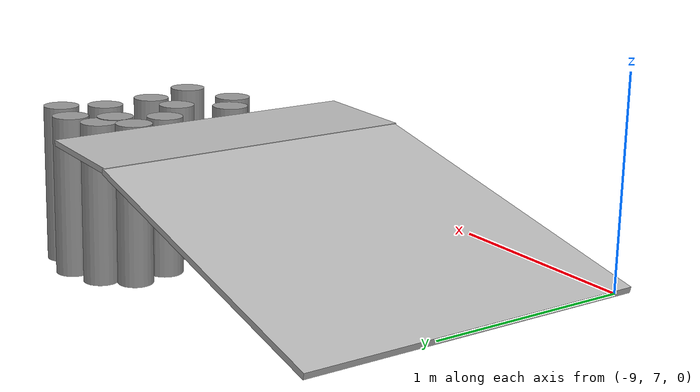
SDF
<sdf version="1.7">
 <world name="default">
  <model name="ramped_stepping_stone_clone_1_clone_clone_2_clone">
   <static>1</static>
   <pose>-6.3707 7.45436 0.234508 0 -0.017033 0</pose>
   <link name="link">
    <collision name="collision"><geometry><box><size>0.666252 1.89779 0.033476</size></box></geometry></collision>
    <visual name="visual"><geometry><box><size>0.666252 1.89779 0.033476</size></box></geometry></visual>
   </link>
  </model>
  <model name="round_step_clone_clone_3">
   <link name="link">
    <inertial>
     <mass>0.0497635</mass>
     <inertia>
      <ixx>0.00430173</ixx>
      <ixy>0</ixy>
      <ixz>0</ixz>
      <iyy>0.00430173</iyy>
      <iyz>0</iyz>
      <izz>0.00030955</izz>
     </inertia>
    </inertial>
    <pose>0.001965 -0.009653 -0.499784 1.55252 -0 0</pose>
    <visual name="visual">
     <geometry><cylinder><radius>0.111539</radius><length>1</length></cylinder></geometry>
     <material>
      <script><name>Gazebo/Grey</name><uri>file://media/materials/scripts/gazebo.material</uri></script>
      <shader type="pixel"/>
     </material>
    </visual>
    <collision name="collision">
     <geometry><cylinder><radius>0.111539</radius><length>1</length></cylinder></geometry>
     <surface>
      <friction>
       <ode><mu>1</mu><mu2>1</mu2><fdir1>0 0 0</fdir1><slip1>0</slip1><slip2>0</slip2></ode>
       <torsional>
        <coefficient>1</coefficient>
        <patch_radius>0</patch_radius>
        <surface_radius>0</surface_radius>
        <use_patch_radius>1</use_patch_radius>
        <ode><slip>0</slip></ode>
       </torsional>
      </friction>
      <bounce><restitution_coefficient>0</restitution_coefficient><threshold>1e+06</threshold></bounce>
      <contact>
       <collide_without_contact>0</collide_without_contact>
       <collide_without_contact_bitmask>1</collide_without_contact_bitmask>
       <collide_bitmask>1</collide_bitmask>
       <ode>
        <soft_cfm>0</soft_cfm>
        <soft_erp>0.2</soft_erp>
        <kp>1e+13</kp>
        <kd>1</kd>
        <max_vel>0.01</max_vel>
        <min_depth>0</min_depth>
       </ode>
       <bullet>
        <split_impulse>1</split_impulse>
        <split_impulse_penetration_threshold>-0.01</split_impulse_penetration_threshold>
        <soft_cfm>0</soft_cfm>
        <soft_erp>0.2</soft_erp>
        <kp>1e+13</kp>
        <kd>1</kd>
       </bullet>
      </contact>
     </surface>
    </collision>
   </link>
   <static>1</static>
   <pose>-5.21817 7.53102 -0.259907 1.61465 -0 0</pose>
  </model>
  <model name="round_step_clone_clone_4">
   <link name="link">
    <inertial>
     <mass>0.0497635</mass>
     <inertia>
      <ixx>0.00430173</ixx>
      <ixy>0</ixy>
      <ixz>0</ixz>
      <iyy>0.00430173</iyy>
      <iyz>0</iyz>
      <izz>0.00030955</izz>
     </inertia>
    </inertial>
    <pose>0.001965 -0.009653 -0.499784 1.55252 -0 0</pose>
    <visual name="visual">
     <geometry><cylinder><radius>0.111539</radius><length>1</length></cylinder></geometry>
     <material>
      <script><name>Gazebo/Grey</name><uri>file://media/materials/scripts/gazebo.material</uri></script>
      <shader type="pixel"/>
     </material>
    </visual>
    <collision name="collision">
     <geometry><cylinder><radius>0.111539</radius><length>1</length></cylinder></geometry>
     <surface>
      <friction>
       <ode><mu>1</mu><mu2>1</mu2><fdir1>0 0 0</fdir1><slip1>0</slip1><slip2>0</slip2></ode>
       <torsional>
        <coefficient>1</coefficient>
        <patch_radius>0</patch_radius>
        <surface_radius>0</surface_radius>
        <use_patch_radius>1</use_patch_radius>
        <ode><slip>0</slip></ode>
       </torsional>
      </friction>
      <bounce><restitution_coefficient>0</restitution_coefficient><threshold>1e+06</threshold></bounce>
      <contact>
       <collide_without_contact>0</collide_without_contact>
       <collide_without_contact_bitmask>1</collide_without_contact_bitmask>
       <collide_bitmask>1</collide_bitmask>
       <ode>
        <soft_cfm>0</soft_cfm>
        <soft_erp>0.2</soft_erp>
        <kp>1e+13</kp>
        <kd>1</kd>
        <max_vel>0.01</max_vel>
        <min_depth>0</min_depth>
       </ode>
       <bullet>
        <split_impulse>1</split_impulse>
        <split_impulse_penetration_threshold>-0.01</split_impulse_penetration_threshold>
        <soft_cfm>0</soft_cfm>
        <soft_erp>0.2</soft_erp>
        <kp>1e+13</kp>
        <kd>1</kd>
       </bullet>
      </contact>
     </surface>
    </collision>
   </link>
   <static>1</static>
   <pose>-5.33829 7.28402 -0.259907 1.61465 -0 0</pose>
  </model>
  <model name="round_step_clone_clone_5">
   <link name="link">
    <inertial>
     <mass>0.0497635</mass>
     <inertia>
      <ixx>0.00430173</ixx>
      <ixy>0</ixy>
      <ixz>0</ixz>
      <iyy>0.00430173</iyy>
      <iyz>0</iyz>
      <izz>0.00030955</izz>
     </inertia>
    </inertial>
    <pose>0.001965 -0.009653 -0.499784 1.55252 -0 0</pose>
    <visual name="visual">
     <geometry><cylinder><radius>0.111539</radius><length>1</length></cylinder></geometry>
     <material>
      <script><name>Gazebo/Grey</name><uri>file://media/materials/scripts/gazebo.material</uri></script>
      <shader type="pixel"/>
     </material>
    </visual>
    <collision name="collision">
     <geometry><cylinder><radius>0.111539</radius><length>1</length></cylinder></geometry>
     <surface>
      <friction>
       <ode><mu>1</mu><mu2>1</mu2><fdir1>0 0 0</fdir1><slip1>0</slip1><slip2>0</slip2></ode>
       <torsional>
        <coefficient>1</coefficient>
        <patch_radius>0</patch_radius>
        <surface_radius>0</surface_radius>
        <use_patch_radius>1</use_patch_radius>
        <ode><slip>0</slip></ode>
       </torsional>
      </friction>
      <bounce><restitution_coefficient>0</restitution_coefficient><threshold>1e+06</threshold></bounce>
      <contact>
       <collide_without_contact>0</collide_without_contact>
       <collide_without_contact_bitmask>1</collide_without_contact_bitmask>
       <collide_bitmask>1</collide_bitmask>
       <ode>
        <soft_cfm>0</soft_cfm>
        <soft_erp>0.2</soft_erp>
        <kp>1e+13</kp>
        <kd>1</kd>
        <max_vel>0.01</max_vel>
        <min_depth>0</min_depth>
       </ode>
       <bullet>
        <split_impulse>1</split_impulse>
        <split_impulse_penetration_threshold>-0.01</split_impulse_penetration_threshold>
        <soft_cfm>0</soft_cfm>
        <soft_erp>0.2</soft_erp>
        <kp>1e+13</kp>
        <kd>1</kd>
       </bullet>
      </contact>
     </surface>
    </collision>
   </link>
   <static>1</static>
   <pose>-5.31255 6.94999 -0.259907 1.61465 -0 0</pose>
  </model>
  <model name="round_step_clone_clone_7">
   <link name="link">
    <inertial>
     <mass>0.0497635</mass>
     <inertia>
      <ixx>0.00430173</ixx>
      <ixy>0</ixy>
      <ixz>0</ixz>
      <iyy>0.00430173</iyy>
      <iyz>0</iyz>
      <izz>0.00030955</izz>
     </inertia>
    </inertial>
    <pose>0.001965 -0.009653 -0.499784 1.55252 -0 0</pose>
    <visual name="visual">
     <geometry><cylinder><radius>0.111539</radius><length>1</length></cylinder></geometry>
     <material>
      <script><name>Gazebo/Grey</name><uri>file://media/materials/scripts/gazebo.material</uri></script>
      <shader type="pixel"/>
     </material>
    </visual>
    <collision name="collision">
     <geometry><cylinder><radius>0.111539</radius><length>1</length></cylinder></geometry>
     <surface>
      <friction>
       <ode><mu>1</mu><mu2>1</mu2><fdir1>0 0 0</fdir1><slip1>0</slip1><slip2>0</slip2></ode>
       <torsional>
        <coefficient>1</coefficient>
        <patch_radius>0</patch_radius>
        <surface_radius>0</surface_radius>
        <use_patch_radius>1</use_patch_radius>
        <ode><slip>0</slip></ode>
       </torsional>
      </friction>
      <bounce><restitution_coefficient>0</restitution_coefficient><threshold>1e+06</threshold></bounce>
      <contact>
       <collide_without_contact>0</collide_without_contact>
       <collide_without_contact_bitmask>1</collide_without_contact_bitmask>
       <collide_bitmask>1</collide_bitmask>
       <ode>
        <soft_cfm>0</soft_cfm>
        <soft_erp>0.2</soft_erp>
        <kp>1e+13</kp>
        <kd>1</kd>
        <max_vel>0.01</max_vel>
        <min_depth>0</min_depth>
       </ode>
       <bullet>
        <split_impulse>1</split_impulse>
        <split_impulse_penetration_threshold>-0.01</split_impulse_penetration_threshold>
        <soft_cfm>0</soft_cfm>
        <soft_erp>0.2</soft_erp>
        <kp>1e+13</kp>
        <kd>1</kd>
       </bullet>
      </contact>
     </surface>
    </collision>
   </link>
   <static>1</static>
   <pose>-5.58092 6.90475 -0.259907 1.61465 -0 0</pose>
  </model>
  <model name="round_step_clone_clone_8">
   <link name="link">
    <inertial>
     <mass>0.0497635</mass>
     <inertia>
      <ixx>0.00430173</ixx>
      <ixy>0</ixy>
      <ixz>0</ixz>
      <iyy>0.00430173</iyy>
      <iyz>0</iyz>
      <izz>0.00030955</izz>
     </inertia>
    </inertial>
    <pose>0.001965 -0.009653 -0.499784 1.55252 -0 0</pose>
    <visual name="visual">
     <geometry><cylinder><radius>0.111539</radius><length>1</length></cylinder></geometry>
     <material>
      <script><name>Gazebo/Grey</name><uri>file://media/materials/scripts/gazebo.material</uri></script>
      <shader type="pixel"/>
     </material>
    </visual>
    <collision name="collision">
     <geometry><cylinder><radius>0.111539</radius><length>1</length></cylinder></geometry>
     <surface>
      <friction>
       <ode><mu>1</mu><mu2>1</mu2><fdir1>0 0 0</fdir1><slip1>0</slip1><slip2>0</slip2></ode>
       <torsional>
        <coefficient>1</coefficient>
        <patch_radius>0</patch_radius>
        <surface_radius>0</surface_radius>
        <use_patch_radius>1</use_patch_radius>
        <ode><slip>0</slip></ode>
       </torsional>
      </friction>
      <bounce><restitution_coefficient>0</restitution_coefficient><threshold>1e+06</threshold></bounce>
      <contact>
       <collide_without_contact>0</collide_without_contact>
       <collide_without_contact_bitmask>1</collide_without_contact_bitmask>
       <collide_bitmask>1</collide_bitmask>
       <ode>
        <soft_cfm>0</soft_cfm>
        <soft_erp>0.2</soft_erp>
        <kp>1e+13</kp>
        <kd>1</kd>
        <max_vel>0.01</max_vel>
        <min_depth>0</min_depth>
       </ode>
       <bullet>
        <split_impulse>1</split_impulse>
        <split_impulse_penetration_threshold>-0.01</split_impulse_penetration_threshold>
        <soft_cfm>0</soft_cfm>
        <soft_erp>0.2</soft_erp>
        <kp>1e+13</kp>
        <kd>1</kd>
       </bullet>
      </contact>
     </surface>
    </collision>
   </link>
   <static>1</static>
   <pose>-5.66805 7.36995 -0.259907 1.61465 -0 0</pose>
  </model>
  <model name="round_step_clone_clone_9">
   <link name="link">
    <inertial>
     <mass>0.0497635</mass>
     <inertia>
      <ixx>0.00430173</ixx>
      <ixy>0</ixy>
      <ixz>0</ixz>
      <iyy>0.00430173</iyy>
      <iyz>0</iyz>
      <izz>0.00030955</izz>
     </inertia>
    </inertial>
    <pose>0.001965 -0.009653 -0.499784 1.55252 -0 0</pose>
    <visual name="visual">
     <geometry><cylinder><radius>0.111539</radius><length>1</length></cylinder></geometry>
     <material>
      <script><name>Gazebo/Grey</name><uri>file://media/materials/scripts/gazebo.material</uri></script>
      <shader type="pixel"/>
     </material>
    </visual>
    <collision name="collision">
     <geometry><cylinder><radius>0.111539</radius><length>1</length></cylinder></geometry>
     <surface>
      <friction>
       <ode><mu>1</mu><mu2>1</mu2><fdir1>0 0 0</fdir1><slip1>0</slip1><slip2>0</slip2></ode>
       <torsional>
        <coefficient>1</coefficient>
        <patch_radius>0</patch_radius>
        <surface_radius>0</surface_radius>
        <use_patch_radius>1</use_patch_radius>
        <ode><slip>0</slip></ode>
       </torsional>
      </friction>
      <bounce><restitution_coefficient>0</restitution_coefficient><threshold>1e+06</threshold></bounce>
      <contact>
       <collide_without_contact>0</collide_without_contact>
       <collide_without_contact_bitmask>1</collide_without_contact_bitmask>
       <collide_bitmask>1</collide_bitmask>
       <ode>
        <soft_cfm>0</soft_cfm>
        <soft_erp>0.2</soft_erp>
        <kp>1e+13</kp>
        <kd>1</kd>
        <max_vel>0.01</max_vel>
        <min_depth>0</min_depth>
       </ode>
       <bullet>
        <split_impulse>1</split_impulse>
        <split_impulse_penetration_threshold>-0.01</split_impulse_penetration_threshold>
        <soft_cfm>0</soft_cfm>
        <soft_erp>0.2</soft_erp>
        <kp>1e+13</kp>
        <kd>1</kd>
       </bullet>
      </contact>
     </surface>
    </collision>
   </link>
   <static>1</static>
   <pose>-5.50936 7.59353 -0.259907 1.61465 -0 0</pose>
  </model>
  <model name="round_step_clone_clone_10">
   <link name="link">
    <inertial>
     <mass>0.0497635</mass>
     <inertia>
      <ixx>0.00430173</ixx>
      <ixy>0</ixy>
      <ixz>0</ixz>
      <iyy>0.00430173</iyy>
      <iyz>0</iyz>
      <izz>0.00030955</izz>
     </inertia>
    </inertial>
    <pose>0.001965 -0.009653 -0.499784 1.55252 -0 0</pose>
    <visual name="visual">
     <geometry><cylinder><radius>0.111539</radius><length>1</length></cylinder></geometry>
     <material>
      <script><name>Gazebo/Grey</name><uri>file://media/materials/scripts/gazebo.material</uri></script>
      <shader type="pixel"/>
     </material>
    </visual>
    <collision name="collision">
     <geometry><cylinder><radius>0.111539</radius><length>1</length></cylinder></geometry>
     <surface>
      <friction>
       <ode><mu>1</mu><mu2>1</mu2><fdir1>0 0 0</fdir1><slip1>0</slip1><slip2>0</slip2></ode>
       <torsional>
        <coefficient>1</coefficient>
        <patch_radius>0</patch_radius>
        <surface_radius>0</surface_radius>
        <use_patch_radius>1</use_patch_radius>
        <ode><slip>0</slip></ode>
       </torsional>
      </friction>
      <bounce><restitution_coefficient>0</restitution_coefficient><threshold>1e+06</threshold></bounce>
      <contact>
       <collide_without_contact>0</collide_without_contact>
       <collide_without_contact_bitmask>1</collide_without_contact_bitmask>
       <collide_bitmask>1</collide_bitmask>
       <ode>
        <soft_cfm>0</soft_cfm>
        <soft_erp>0.2</soft_erp>
        <kp>1e+13</kp>
        <kd>1</kd>
        <max_vel>0.01</max_vel>
        <min_depth>0</min_depth>
       </ode>
       <bullet>
        <split_impulse>1</split_impulse>
        <split_impulse_penetration_threshold>-0.01</split_impulse_penetration_threshold>
        <soft_cfm>0</soft_cfm>
        <soft_erp>0.2</soft_erp>
        <kp>1e+13</kp>
        <kd>1</kd>
       </bullet>
      </contact>
     </surface>
    </collision>
   </link>
   <static>1</static>
   <pose>-5.82641 7.11341 -0.259907 1.61465 -0 0</pose>
  </model>
  <model name="round_step_clone_clone_11">
   <link name="link">
    <inertial>
     <mass>0.0497635</mass>
     <inertia>
      <ixx>0.00430173</ixx>
      <ixy>0</ixy>
      <ixz>0</ixz>
      <iyy>0.00430173</iyy>
      <iyz>0</iyz>
      <izz>0.00030955</izz>
     </inertia>
    </inertial>
    <pose>0.001965 -0.009653 -0.499784 1.55252 -0 0</pose>
    <visual name="visual">
     <geometry><cylinder><radius>0.111539</radius><length>1</length></cylinder></geometry>
     <material>
      <script><name>Gazebo/Grey</name><uri>file://media/materials/scripts/gazebo.material</uri></script>
      <shader type="pixel"/>
     </material>
    </visual>
    <collision name="collision">
     <geometry><cylinder><radius>0.111539</radius><length>1</length></cylinder></geometry>
     <surface>
      <friction>
       <ode><mu>1</mu><mu2>1</mu2><fdir1>0 0 0</fdir1><slip1>0</slip1><slip2>0</slip2></ode>
       <torsional>
        <coefficient>1</coefficient>
        <patch_radius>0</patch_radius>
        <surface_radius>0</surface_radius>
        <use_patch_radius>1</use_patch_radius>
        <ode><slip>0</slip></ode>
       </torsional>
      </friction>
      <bounce><restitution_coefficient>0</restitution_coefficient><threshold>1e+06</threshold></bounce>
      <contact>
       <collide_without_contact>0</collide_without_contact>
       <collide_without_contact_bitmask>1</collide_without_contact_bitmask>
       <collide_bitmask>1</collide_bitmask>
       <ode>
        <soft_cfm>0</soft_cfm>
        <soft_erp>0.2</soft_erp>
        <kp>1e+13</kp>
        <kd>1</kd>
        <max_vel>0.01</max_vel>
        <min_depth>0</min_depth>
       </ode>
       <bullet>
        <split_impulse>1</split_impulse>
        <split_impulse_penetration_threshold>-0.01</split_impulse_penetration_threshold>
        <soft_cfm>0</soft_cfm>
        <soft_erp>0.2</soft_erp>
        <kp>1e+13</kp>
        <kd>1</kd>
       </bullet>
      </contact>
     </surface>
    </collision>
   </link>
   <static>1</static>
   <pose>-5.16319 6.60487 -0.259907 1.61465 -0 0</pose>
  </model>
  <model name="round_step_clone_clone_12">
   <link name="link">
    <inertial>
     <mass>0.0497635</mass>
     <inertia>
      <ixx>0.00430173</ixx>
      <ixy>0</ixy>
      <ixz>0</ixz>
      <iyy>0.00430173</iyy>
      <iyz>0</iyz>
      <izz>0.00030955</izz>
     </inertia>
    </inertial>
    <pose>0.001965 -0.009653 -0.499784 1.55252 -0 0</pose>
    <visual name="visual">
     <geometry><cylinder><radius>0.111539</radius><length>1</length></cylinder></geometry>
     <material>
      <script><name>Gazebo/Grey</name><uri>file://media/materials/scripts/gazebo.material</uri></script>
      <shader type="pixel"/>
     </material>
    </visual>
    <collision name="collision">
     <geometry><cylinder><radius>0.111539</radius><length>1</length></cylinder></geometry>
     <surface>
      <friction>
       <ode><mu>1</mu><mu2>1</mu2><fdir1>0 0 0</fdir1><slip1>0</slip1><slip2>0</slip2></ode>
       <torsional>
        <coefficient>1</coefficient>
        <patch_radius>0</patch_radius>
        <surface_radius>0</surface_radius>
        <use_patch_radius>1</use_patch_radius>
        <ode><slip>0</slip></ode>
       </torsional>
      </friction>
      <bounce><restitution_coefficient>0</restitution_coefficient><threshold>1e+06</threshold></bounce>
      <contact>
       <collide_without_contact>0</collide_without_contact>
       <collide_without_contact_bitmask>1</collide_without_contact_bitmask>
       <collide_bitmask>1</collide_bitmask>
       <ode>
        <soft_cfm>0</soft_cfm>
        <soft_erp>0.2</soft_erp>
        <kp>1e+13</kp>
        <kd>1</kd>
        <max_vel>0.01</max_vel>
        <min_depth>0</min_depth>
       </ode>
       <bullet>
        <split_impulse>1</split_impulse>
        <split_impulse_penetration_threshold>-0.01</split_impulse_penetration_threshold>
        <soft_cfm>0</soft_cfm>
        <soft_erp>0.2</soft_erp>
        <kp>1e+13</kp>
        <kd>1</kd>
       </bullet>
      </contact>
     </surface>
    </collision>
   </link>
   <static>1</static>
   <pose>-5.56848 6.49181 -0.259907 1.61465 -0 0</pose>
  </model>
  <model name="round_step_clone_clone_13">
   <link name="link">
    <inertial>
     <mass>0.0497635</mass>
     <inertia>
      <ixx>0.00430173</ixx>
      <ixy>0</ixy>
      <ixz>0</ixz>
      <iyy>0.00430173</iyy>
      <iyz>0</iyz>
      <izz>0.00030955</izz>
     </inertia>
    </inertial>
    <pose>0.001965 -0.009653 -0.499784 1.55252 -0 0</pose>
    <visual name="visual">
     <geometry><cylinder><radius>0.111539</radius><length>1</length></cylinder></geometry>
     <material>
      <script><name>Gazebo/Grey</name><uri>file://media/materials/scripts/gazebo.material</uri></script>
      <shader type="pixel"/>
     </material>
    </visual>
    <collision name="collision">
     <geometry><cylinder><radius>0.111539</radius><length>1</length></cylinder></geometry>
     <surface>
      <friction>
       <ode><mu>1</mu><mu2>1</mu2><fdir1>0 0 0</fdir1><slip1>0</slip1><slip2>0</slip2></ode>
       <torsional>
        <coefficient>1</coefficient>
        <patch_radius>0</patch_radius>
        <surface_radius>0</surface_radius>
        <use_patch_radius>1</use_patch_radius>
        <ode><slip>0</slip></ode>
       </torsional>
      </friction>
      <bounce><restitution_coefficient>0</restitution_coefficient><threshold>1e+06</threshold></bounce>
      <contact>
       <collide_without_contact>0</collide_without_contact>
       <collide_without_contact_bitmask>1</collide_without_contact_bitmask>
       <collide_bitmask>1</collide_bitmask>
       <ode>
        <soft_cfm>0</soft_cfm>
        <soft_erp>0.2</soft_erp>
        <kp>1e+13</kp>
        <kd>1</kd>
        <max_vel>0.01</max_vel>
        <min_depth>0</min_depth>
       </ode>
       <bullet>
        <split_impulse>1</split_impulse>
        <split_impulse_penetration_threshold>-0.01</split_impulse_penetration_threshold>
        <soft_cfm>0</soft_cfm>
        <soft_erp>0.2</soft_erp>
        <kp>1e+13</kp>
        <kd>1</kd>
       </bullet>
      </contact>
     </surface>
    </collision>
   </link>
   <static>1</static>
   <pose>-5.78977 6.63593 -0.259907 1.61465 -0 0</pose>
  </model>
  <model name="round_step_clone_clone_14">
   <link name="link">
    <inertial>
     <mass>0.0497635</mass>
     <inertia>
      <ixx>0.00430173</ixx>
      <ixy>0</ixy>
      <ixz>0</ixz>
      <iyy>0.00430173</iyy>
      <iyz>0</iyz>
      <izz>0.00030955</izz>
     </inertia>
    </inertial>
    <pose>0.001965 -0.009653 -0.499784 1.55252 -0 0</pose>
    <visual name="visual">
     <geometry><cylinder><radius>0.111539</radius><length>1</length></cylinder></geometry>
     <material>
      <script><name>Gazebo/Grey</name><uri>file://media/materials/scripts/gazebo.material</uri></script>
      <shader type="pixel"/>
     </material>
    </visual>
    <collision name="collision">
     <geometry><cylinder><radius>0.111539</radius><length>1</length></cylinder></geometry>
     <surface>
      <friction>
       <ode><mu>1</mu><mu2>1</mu2><fdir1>0 0 0</fdir1><slip1>0</slip1><slip2>0</slip2></ode>
       <torsional>
        <coefficient>1</coefficient>
        <patch_radius>0</patch_radius>
        <surface_radius>0</surface_radius>
        <use_patch_radius>1</use_patch_radius>
        <ode><slip>0</slip></ode>
       </torsional>
      </friction>
      <bounce><restitution_coefficient>0</restitution_coefficient><threshold>1e+06</threshold></bounce>
      <contact>
       <collide_without_contact>0</collide_without_contact>
       <collide_without_contact_bitmask>1</collide_without_contact_bitmask>
       <collide_bitmask>1</collide_bitmask>
       <ode>
        <soft_cfm>0</soft_cfm>
        <soft_erp>0.2</soft_erp>
        <kp>1e+13</kp>
        <kd>1</kd>
        <max_vel>0.01</max_vel>
        <min_depth>0</min_depth>
       </ode>
       <bullet>
        <split_impulse>1</split_impulse>
        <split_impulse_penetration_threshold>-0.01</split_impulse_penetration_threshold>
        <soft_cfm>0</soft_cfm>
        <soft_erp>0.2</soft_erp>
        <kp>1e+13</kp>
        <kd>1</kd>
       </bullet>
      </contact>
     </surface>
    </collision>
   </link>
   <static>1</static>
   <pose>-5.75052 7.51593 -0.259907 1.61465 -0 0</pose>
  </model>
  <model name="round_step_clone_clone_15">
   <link name="link">
    <inertial>
     <mass>0.0497635</mass>
     <inertia>
      <ixx>0.00430173</ixx>
      <ixy>0</ixy>
      <ixz>0</ixz>
      <iyy>0.00430173</iyy>
      <iyz>0</iyz>
      <izz>0.00030955</izz>
     </inertia>
    </inertial>
    <pose>0.001965 -0.009653 -0.499784 1.55252 -0 0</pose>
    <visual name="visual">
     <geometry><cylinder><radius>0.111539</radius><length>1</length></cylinder></geometry>
     <material>
      <script><name>Gazebo/Grey</name><uri>file://media/materials/scripts/gazebo.material</uri></script>
      <shader type="pixel"/>
     </material>
    </visual>
    <collision name="collision">
     <geometry><cylinder><radius>0.111539</radius><length>1</length></cylinder></geometry>
     <surface>
      <friction>
       <ode><mu>1</mu><mu2>1</mu2><fdir1>0 0 0</fdir1><slip1>0</slip1><slip2>0</slip2></ode>
       <torsional>
        <coefficient>1</coefficient>
        <patch_radius>0</patch_radius>
        <surface_radius>0</surface_radius>
        <use_patch_radius>1</use_patch_radius>
        <ode><slip>0</slip></ode>
       </torsional>
      </friction>
      <bounce><restitution_coefficient>0</restitution_coefficient><threshold>1e+06</threshold></bounce>
      <contact>
       <collide_without_contact>0</collide_without_contact>
       <collide_without_contact_bitmask>1</collide_without_contact_bitmask>
       <collide_bitmask>1</collide_bitmask>
       <ode>
        <soft_cfm>0</soft_cfm>
        <soft_erp>0.2</soft_erp>
        <kp>1e+13</kp>
        <kd>1</kd>
        <max_vel>0.01</max_vel>
        <min_depth>0</min_depth>
       </ode>
       <bullet>
        <split_impulse>1</split_impulse>
        <split_impulse_penetration_threshold>-0.01</split_impulse_penetration_threshold>
        <soft_cfm>0</soft_cfm>
        <soft_erp>0.2</soft_erp>
        <kp>1e+13</kp>
        <kd>1</kd>
       </bullet>
      </contact>
     </surface>
    </collision>
   </link>
   <static>1</static>
   <pose>-5.89475 7.35287 -0.259907 1.61465 -0 0</pose>
  </model>
  <model name="ramped_stepping_stone_clone_3_clone">
   <static>1</static>
   <pose>-7.667650 7.461280 0.016800 0 -0.212574 0</pose>
   <link name="link">
    <collision name="collision"><geometry><box><size>1.99786 1.89779 0.033476</size></box></geometry></collision>
    <visual name="visual"><geometry><box><size>1.99786 1.89779 0.033476</size></box></geometry></visual>
   </link>
  </model>
 </world>
</sdf>
